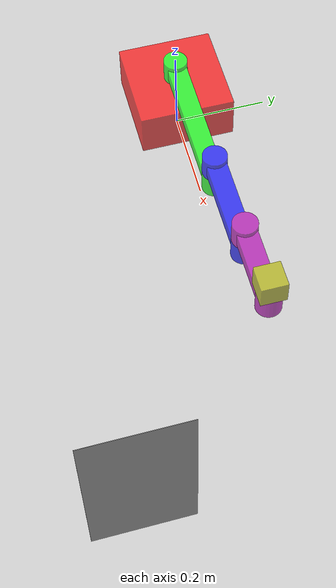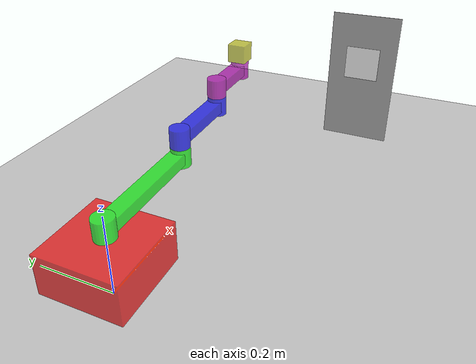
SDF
<?xml version="1.0" ?>
<sdf version="1.6">
  <world name="gz_arm_world">
    <physics name="1ms" type="ignored">
      <max_step_size>0.001</max_step_size>
      <real_time_factor>1.0</real_time_factor>
    </physics>

    <light type="point" name="sun">
      <cast_shadows>false</cast_shadows>
      <pose>4 4 5 0 0 0</pose>
      <visualize>false</visualize>
      <diffuse>0.8 0.8 0.8 1</diffuse>
      <specular>0.2 0.2 0.2 1</specular>
      <attenuation>
        <range>1000</range>
        <constant>0.9</constant>
        <linear>0.01</linear>
        <quadratic>0.001</quadratic>
      </attenuation>
    </light>

    <light type="point" name="sun2">
      <cast_shadows>false</cast_shadows>
      <pose>4 -4 5 0 0 0</pose>
      <visualize>false</visualize>
      <diffuse>0.8 0.8 0.8 1</diffuse>
      <specular>0.2 0.2 0.2 1</specular>
      <attenuation>
        <range>1000</range>
        <constant>0.9</constant>
        <linear>0.01</linear>
        <quadratic>0.001</quadratic>
      </attenuation>
    </light>

    <light type="point" name="sun3">
      <cast_shadows>false</cast_shadows>
      <pose>-4 4 5 0 0 0</pose>
      <visualize>false</visualize>
      <diffuse>0.8 0.8 0.8 1</diffuse>
      <specular>0.2 0.2 0.2 1</specular>
      <attenuation>
        <range>1000</range>
        <constant>0.9</constant>
        <linear>0.01</linear>
        <quadratic>0.001</quadratic>
      </attenuation>
    </light>

    <light type="point" name="sun4">
      <cast_shadows>false</cast_shadows>
      <pose>-4 -4 5 0 0 0</pose>
      <visualize>false</visualize>
      <diffuse>0.8 0.8 0.8 1</diffuse>
      <specular>0.2 0.2 0.2 1</specular>
      <attenuation>
        <range>1000</range>
        <constant>0.9</constant>
        <linear>0.01</linear>
        <quadratic>0.001</quadratic>
      </attenuation>
    </light>

    <model name="ground_plane">
      <static>true</static>
      <link name="link">
        <collision name="collision">
          <geometry>
            <plane>
              <normal>0 0 1</normal>
            </plane>
          </geometry>
        </collision>
        <visual name="visual">
          <geometry>
            <plane>
              <normal>0 0 1</normal>
              <size>10 10</size>
            </plane>
          </geometry>
          <material>
            <ambient>0.8 0.8 0.8 1</ambient>
            <diffuse>0.8 0.8 0.8 1</diffuse>
            <specular>0.8 0.8 0.8 1</specular>
          </material>
        </visual>
      </link>
    </model>

    <model name="ar_block">
      <pose relative_to="world">0.9 -0.3 0 0 0 0</pose>
      <link name="base_link">
        <pose relative_to="__model__">0 0 0 0 0 0</pose>
        <inertial>
          <mass>10.0</mass>
          <inertia>
            <ixx>0.00417</ixx>
            <ixy>0</ixy>
            <ixz>0</ixz>
            <iyy>0.00417</iyy>
            <iyz>0</iyz>
            <izz>0.0067</izz>
          </inertia>
        </inertial>
        <visual name='tag'>
          <pose>-0.0005 0 0.25 0 0 0</pose>
          <geometry>
            <box>
              <size>0.001 0.1 0.1</size>
            </box>
          </geometry>
          <material>
            <albedo_map>marker.png</albedo_map>
            <pbr>
              <metal>
                <!-- TODO parameterize -->
                <albedo_map>/tmp/gz_arm_aruco.png</albedo_map>
              </metal>
            </pbr>
            <ambient>1.0 1.0 1.0 1.0</ambient>
            <diffuse>1.0 1.0 1.0 1.0</diffuse>
            <specular>1.0 1.0 1.0 1.0</specular>
          </material>
        </visual>
        <visual name='back'>
          <pose>0.0005 0 0.2 0 0 0</pose>
          <geometry>
            <box>
              <size>0.001 0.2 0.4</size>
            </box>
          </geometry>
          <material>
            <ambient>0.7 0.7 0.7 1.0</ambient>
            <diffuse>0.7 0.7 0.7 1.0</diffuse>
            <specular>0.7 0.7 0.7 1.0</specular>
          </material>
        </visual>
        <collision name='collision'>
          <pose>0 0 0.15 0 0 0</pose>
          <geometry>
            <box>
              <size>0.1 0.1 0.3</size>
            </box>
          </geometry>
        </collision>
      </link>
    </model>

    <model name="gz_arm">
      <pose relative_to="world">0 0 0 0 0 0</pose>
      <link name='base_link'>
        <pose relative_to="__model__">0 0 0.05 0 0 0</pose>
        <inertial>
          <mass>10.0</mass>
          <inertia>
            <ixx>0.00417</ixx>
            <ixy>0</ixy>
            <ixz>0</ixz>
            <iyy>0.00417</iyy>
            <iyz>0</iyz>
            <izz>0.0067</izz>
          </inertia>
        </inertial>
        <visual name='visual'>
          <pose>0 0 0.05 0 0 0</pose>
          <geometry>
            <box>
              <size>0.2 0.2 0.1</size>
            </box>
          </geometry>
          <material>
            <ambient>1.0 0.0 0.0 0.7</ambient>
            <diffuse>1.0 0.0 0.0 0.7</diffuse>
            <specular>1.0 0.0 0.0 0.7</specular>
          </material>
        </visual>
        <collision name='collision'>
          <pose>0 0 0.05 0 0 0</pose>
          <geometry>
            <box>
              <size>0.2 0.2 0.1</size>
            </box>
          </geometry>
        </collision>
      </link>

      <!--
          https://en.wikibooks.org/wiki/Statics/Moment_of_Inertia_(contents)
          use m/12*(h^2 + w^2) for all links
          2,710kg/m3
      -->

      <link name="arm1_link">
        <pose relative_to="base_link">0 0 0.125 0 0 0</pose>
        <inertial>
          <mass>0.97560</mass>
          <inertia>
            <ixx>0.00020</ixx>
            <ixy>0</ixy>
            <ixz>0</ixz>
            <iyy>0.00739</iyy>
            <iyz>0</iyz>
            <izz>0.00745</izz>
          </inertia>
        </inertial>
        <collision name='collision'>
          <pose>0.15 0 0 0 0 0</pose>
          <geometry>
            <box>
              <size>0.35 0.05 0.05</size>
            </box>
          </geometry>
        </collision>
        <visual name="link">
          <pose>0.15 0 0 0 0 0</pose>
          <geometry>
            <box>
              <size>0.3 0.04 0.03</size>
            </box>
          </geometry>
          <material>
            <ambient>0.0 1.0 0.0 0.7</ambient>
            <diffuse>0.0 1.0 0.0 0.7</diffuse>
            <specular>0.0 1.0 0.0 0.7</specular>
          </material>
        </visual>
        <visual name="joint1">
          <pose>0.0 0 0 0 0 0</pose>
          <geometry>
            <cylinder>
              <radius>0.025</radius>
              <length>0.05</length>
            </cylinder>
          </geometry>
          <material>
            <ambient>0.0 1.0 0.0 0.7</ambient>
            <diffuse>0.0 1.0 0.0 0.7</diffuse>
            <specular>0.0 1.0 0.0 0.7</specular>
          </material>
        </visual>
        <visual name="joint2">
          <pose>0.3 0 0 0 0 0</pose>
          <geometry>
            <cylinder>
              <radius>0.025</radius>
              <length>0.05</length>
            </cylinder>
          </geometry>
          <material>
            <ambient>0.0 1.0 0.0 0.7</ambient>
            <diffuse>0.0 1.0 0.0 0.7</diffuse>
            <specular>0.0 1.0 0.0 0.7</specular>
          </material>
        </visual>
      </link>

      <link name="arm2_link">
        <pose relative_to="arm1_link">0.3 0 0.05 0 0 0</pose>
        <inertial>
          <mass>0.65040</mass>
          <inertia>
            <ixx>0.00014</ixx>
            <ixy>0</ixy>
            <ixz>0</ixz>
            <iyy>0.00222</iyy>
            <iyz>0</iyz>
            <izz>0.00225</izz>
          </inertia>
        </inertial>
        <collision name='collision'>
          <pose>0.1 0 0 0 0 0</pose>
          <geometry>
            <box>
              <size>0.25 0.05 0.05</size>
            </box>
          </geometry>
        </collision>
        <visual name='link'>
          <pose>0.1 0 0 0 0 0</pose>
          <geometry>
            <box>
              <size>0.2 0.04 0.03</size>
            </box>
          </geometry>
          <material>
            <ambient>0.0 0.0 1.0 0.7</ambient>
            <diffuse>0.0 0.0 1.0 0.7</diffuse>
            <specular>0.0 0.0 1.0 0.7</specular>
          </material>
        </visual>
        <visual name="joint1">
          <pose>0.0 0 0 0 0 0</pose>
          <geometry>
            <cylinder>
              <radius>0.025</radius>
              <length>0.05</length>
            </cylinder>
          </geometry>
          <material>
            <ambient>0.0 0.0 1.0 0.7</ambient>
            <diffuse>0.0 0.0 1.0 0.7</diffuse>
            <specular>0.0 0.0 1.0 0.7</specular>
          </material>
        </visual>
        <visual name="joint2">
          <pose>0.2 0 0 0 0 0</pose>
          <geometry>
            <cylinder>
              <radius>0.025</radius>
              <length>0.05</length>
            </cylinder>
          </geometry>
          <material>
            <ambient>0.0 0.0 1.0 0.7</ambient>
            <diffuse>0.0 0.0 1.0 0.7</diffuse>
            <specular>0.0 0.0 1.0 0.7</specular>
          </material>
        </visual>
      </link>

      <link name="arm3_link">
        <pose relative_to="arm2_link">0.2 0 0.05 0 0 0</pose>
        <inertial>
          <mass>0.65040</mass>
          <inertia>
            <ixx>0.00014</ixx>
            <ixy>0</ixy>
            <ixz>0</ixz>
            <iyy>0.00222</iyy>
            <iyz>0</iyz>
            <izz>0.00225</izz>
          </inertia>
        </inertial>
        <collision name='collision'>
          <pose>0.1 0 0 0 0 0</pose>
          <geometry>
            <box>
              <size>0.20 0.05 0.05</size>
            </box>
          </geometry>
        </collision>
        <visual name='link'>
          <pose>0.075 0 0 0 0 0</pose>
          <geometry>
            <box>
              <size>0.15 0.04 0.03</size>
            </box>
          </geometry>
          <material>
            <ambient>0.7 0.0 0.7 0.7</ambient>
            <diffuse>0.7 0.0 0.7 0.7</diffuse>
            <specular>0.7 0.0 0.7 0.7</specular>
          </material>
        </visual>
        <visual name="joint1">
          <pose>0.0 0 0 0 0 0</pose>
          <geometry>
            <cylinder>
              <radius>0.025</radius>
              <length>0.05</length>
            </cylinder>
          </geometry>
          <material>
            <ambient>0.7 0.0 0.7 0.7</ambient>
            <ambient>0.7 0.0 0.7 0.7</ambient>
            <diffuse>0.7 0.0 0.7 0.7</diffuse>
          </material>
        </visual>
        <visual name="joint2">
          <pose>0.15 0 0 0 0 0</pose>
          <geometry>
            <cylinder>
              <radius>0.025</radius>
              <length>0.05</length>
            </cylinder>
          </geometry>
          <material>
            <ambient>0.7 0.0 0.7 0.7</ambient>
            <ambient>0.7 0.0 0.7 0.7</ambient>
            <diffuse>0.7 0.0 0.7 0.7</diffuse>
          </material>
        </visual>
      </link>

      <link name="camera_link">
        <pose relative_to="arm3_link">0.15 0 0.05 0 0 0</pose>
        <inertial>
          <mass>0.065</mass>
          <inertia>
            <ixx>0.00014</ixx>
            <ixy>0</ixy>
            <ixz>0</ixz>
            <iyy>0.00014</iyy>
            <iyz>0</iyz>
            <izz>0.00014</izz>
          </inertia>
        </inertial>
        <collision name='collision'>
          <pose>0.1 0 0 0 0 0</pose>
          <geometry>
            <box>
              <size>0.05 0.05 0.05</size>
            </box>
          </geometry>
        </collision>
        <visual name='link'>
          <pose>0 0 0 0 0 0</pose>
          <geometry>
            <box>
              <size>0.05 0.05 0.05</size>
            </box>
          </geometry>
          <material>
            <ambient>0.7 0.7 0.0 0.7</ambient>
            <diffuse>0.7 0.7 0.0 0.7</diffuse>
            <specular>0.7 0.7 0.0 0.7</specular>
          </material>
        </visual>
        <sensor type="camera" name="camera">
          <camera name="camera">
            <!--  320 / (2 * tan(hfov/2)) -->
            <horizontal_fov>2.0</horizontal_fov>
            <image>
              <width>640</width>
              <height>240</height>
              <format>L8</format>
            </image>
            <clip>
              <near>0.1</near>
              <far>100</far>
            </clip>
            <distortion>
              <k1>0.0</k1>
              <k2>0.0</k2>
              <k3>0.0</k3>
              <p1>0.0</p1>
              <p2>0.0</p2>
            </distortion>
            <lens>
              <intrinsics>
                <fx>205.46963709898583</fx>
                <fy>205.46963709898583</fy>
                <cx>320</cx>
                <cy>120</cy>
                <s>0</s>
              </intrinsics>
            </lens>
          </camera>
          <always_on>1</always_on>
          <update_rate>10.0</update_rate>
          <visualize>true</visualize>
          <topic>/camera</topic>
        </sensor>
      </link>

      <joint name="base_to_arm1_joint" type="revolute">
        <pose relative_to="base_link"/>
        <parent>base_link</parent>
        <child>arm1_link</child>
        <axis>
          <xyz expressed_in="__model__">0 0 1</xyz>
          <limit>
            <lower>-3.0</lower>
            <upper>3.0</upper>
            <effort>100.0</effort>
            <velocity>1.0</velocity>
          </limit>
        </axis>
      </joint>

      <joint name="arm1_to_arm2_joint" type="revolute">
        <pose relative_to="arm1_link">0.3 0 0 0 0 0</pose>
        <parent>arm1_link</parent>
        <child>arm2_link</child>
        <axis>
          <xyz expressed_in="__model__">0 0 1</xyz>
          <limit>
            <lower>-3.0</lower>
            <upper>3.0</upper>
            <effort>100.0</effort>
            <velocity>1.0</velocity>
          </limit>
        </axis>
      </joint>

      <joint name="arm2_to_arm3_joint" type="revolute">
        <pose relative_to="arm2_link">0.2 0 0 0 0 0</pose>
        <parent>arm2_link</parent>
        <child>arm3_link</child>
        <axis>
          <xyz expressed_in="__model__">0 0 1</xyz>
          <limit>
            <lower>-3.0</lower>
            <upper>3.0</upper>
            <effort>100.0</effort>
            <velocity>1.0</velocity>
          </limit>
        </axis>
      </joint>

      <joint name="arm3_to_camera_joint" type="fixed">
        <parent>arm3_link</parent>
        <child>camera_link</child>
      </joint>

      <plugin filename="/opt/ros/iron/lib/libgz_ros2_control-system.so"
              name="gz_ros2_control::GazeboSimROS2ControlPlugin">
        <robot_param>robot_description</robot_param>
        <robot_param_node>robot_state_publisher</robot_param_node>
        <parameters>$(find gz_arm)/resources/joint_controller_velocity.yaml</parameters>
      </plugin>

      <plugin filename="libignition-gazebo-sensors-system.so"
              name="ignition::gazebo::systems::Sensors" >
        <render_engine>ogre2</render_engine>
      </plugin>

    </model>
  </world>
</sdf>
